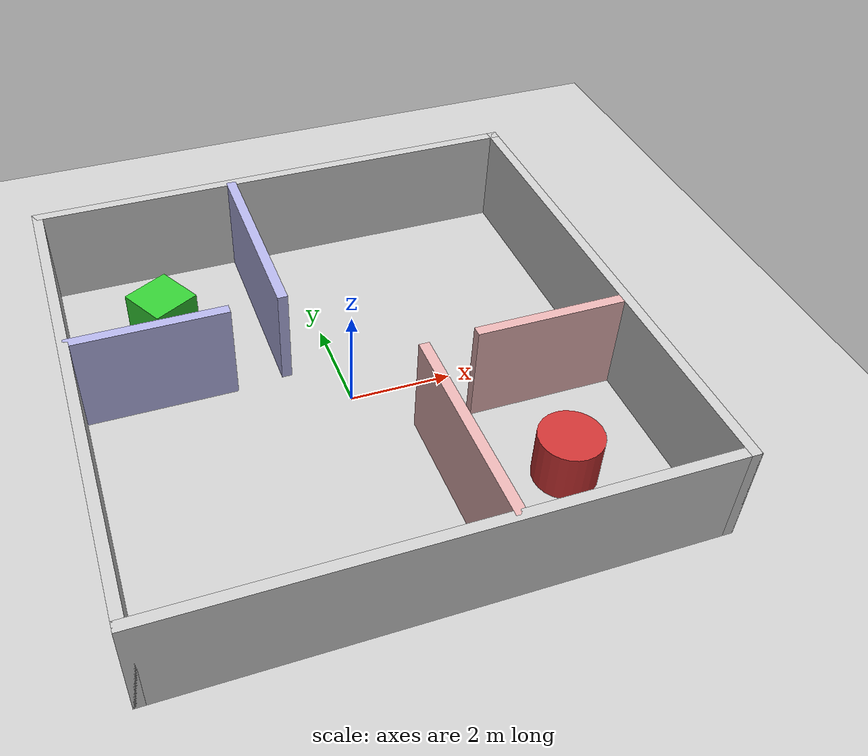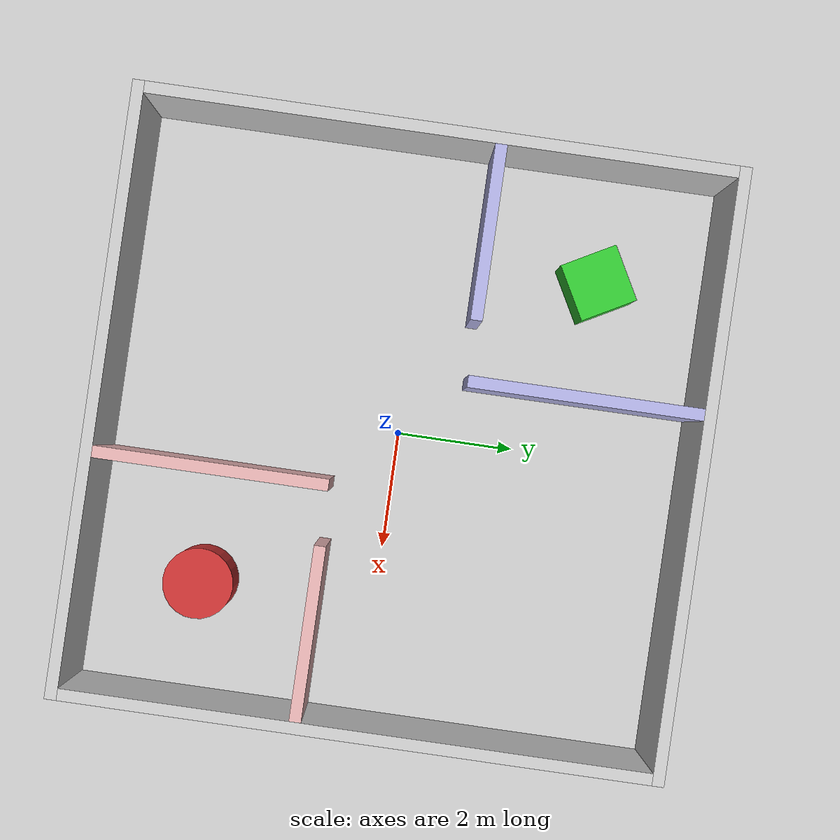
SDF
<?xml version="1.0" ?>
<sdf version="1.6">
  <world name="complex_room">
    <include>
      <uri>model://sun</uri>
    </include>
    <include>
      <uri>model://ground_plane</uri>
    </include>

    <!-- Main Outer Walls (10x10) -->
    <model name="outer_wall_n">
      <static>true</static>
      <pose>0 5 1 0 0 0</pose>
      <link name="link">
        <collision name="col"><geometry><box><size>10.2 0.2 2</size></box></geometry></collision>
        <visual name="vis"><geometry><box><size>10.2 0.2 2</size></box></geometry><material><ambient>0.8 0.8 0.8 1</ambient></material></visual>
      </link>
    </model>
    <model name="outer_wall_s">
      <static>true</static>
      <pose>0 -5 1 0 0 0</pose>
      <link name="link">
        <collision name="col"><geometry><box><size>10.2 0.2 2</size></box></geometry></collision>
        <visual name="vis"><geometry><box><size>10.2 0.2 2</size></box></geometry><material><ambient>0.8 0.8 0.8 1</ambient></material></visual>
      </link>
    </model>
    <model name="outer_wall_e">
      <static>true</static>
      <pose>5 0 1 0 0 0</pose>
      <link name="link">
        <collision name="col"><geometry><box><size>0.2 10.2 2</size></box></geometry></collision>
        <visual name="vis"><geometry><box><size>0.2 10.2 2</size></box></geometry><material><ambient>0.8 0.8 0.8 1</ambient></material></visual>
      </link>
    </model>
    <model name="outer_wall_w">
      <static>true</static>
      <pose>-5 0 1 0 0 0</pose>
      <link name="link">
        <collision name="col"><geometry><box><size>0.2 10.2 2</size></box></geometry></collision>
        <visual name="vis"><geometry><box><size>0.2 10.2 2</size></box></geometry><material><ambient>0.8 0.8 0.8 1</ambient></material></visual>
      </link>
    </model>

    <!-- Room 1 (Top-Left 4x4) -->
    <!-- South Wall with Doorway -->
    <model name="room1_s1">
      <static>true</static>
      <pose>-3.5 1 1 0 0 0</pose>
      <link name="link">
        <collision name="col"><geometry><box><size>3 0.2 2</size></box></geometry></collision>
        <visual name="vis"><geometry><box><size>3 0.2 2</size></box></geometry><material><ambient>0.7 0.7 0.9 1</ambient></material></visual>
      </link>
    </model>
    <!-- East Wall -->
    <model name="room1_e">
      <static>true</static>
      <pose>-1 3 1 0 0 0</pose>
      <link name="link">
        <collision name="col"><geometry><box><size>0.2 4 2</size></box></geometry></collision>
        <visual name="vis"><geometry><box><size>0.2 4 2</size></box></geometry><material><ambient>0.7 0.7 0.9 1</ambient></material></visual>
      </link>
    </model>

    <!-- Room 2 (Bottom-Right 4x4) -->
    <!-- North Wall with Doorway -->
    <model name="room2_n1">
      <static>true</static>
      <pose>3.5 -1 1 0 0 0</pose>
      <link name="link">
        <collision name="col"><geometry><box><size>3 0.2 2</size></box></geometry></collision>
        <visual name="vis"><geometry><box><size>3 0.2 2</size></box></geometry><material><ambient>0.9 0.7 0.7 1</ambient></material></visual>
      </link>
    </model>
    <!-- West Wall -->
    <model name="room2_w">
      <static>true</static>
      <pose>1 -3 1 0 0 0</pose>
      <link name="link">
        <collision name="col"><geometry><box><size>0.2 4 2</size></box></geometry></collision>
        <visual name="vis"><geometry><box><size>0.2 4 2</size></box></geometry><material><ambient>0.9 0.7 0.7 1</ambient></material></visual>
      </link>
    </model>

    <!-- Obstacles inside Room 1 -->
    <model name="box1">
      <static>true</static>
      <pose>-3 3 0.5 0 0 0.5</pose>
      <link name="link">
        <collision name="col"><geometry><box><size>1 1 1</size></box></geometry></collision>
        <visual name="vis"><geometry><box><size>1 1 1</size></box></geometry><material><ambient>0.2 0.8 0.2 1</ambient></material></visual>
      </link>
    </model>

    <!-- Obstacles inside Room 2 -->
    <model name="cyl1">
      <static>true</static>
      <pose>3 -3 0.5 0 0 0</pose>
      <link name="link">
        <collision name="col"><geometry><cylinder><radius>0.6</radius><length>1</length></cylinder></geometry></collision>
        <visual name="vis"><geometry><cylinder><radius>0.6</radius><length>1</length></cylinder></geometry><material><ambient>0.8 0.2 0.2 1</ambient></material></visual>
      </link>
    </model>

    <!-- Obstacle removed to allow robot to spawn here -->

  </world>
</sdf>
